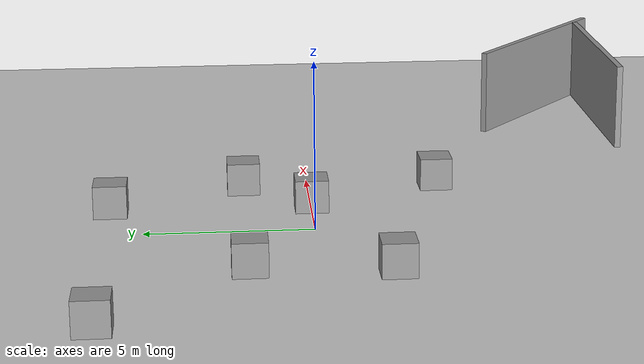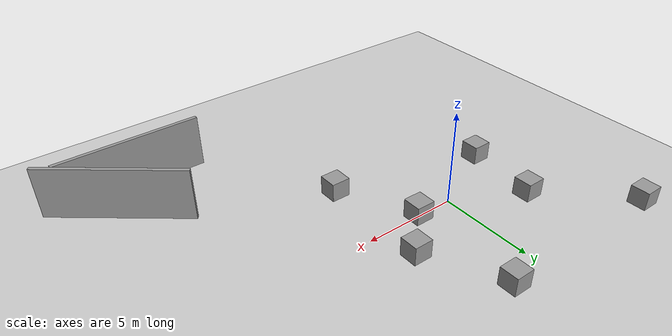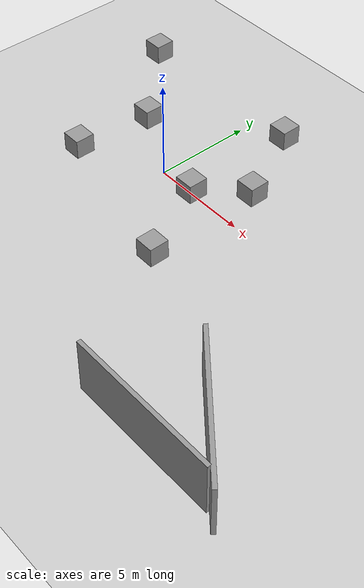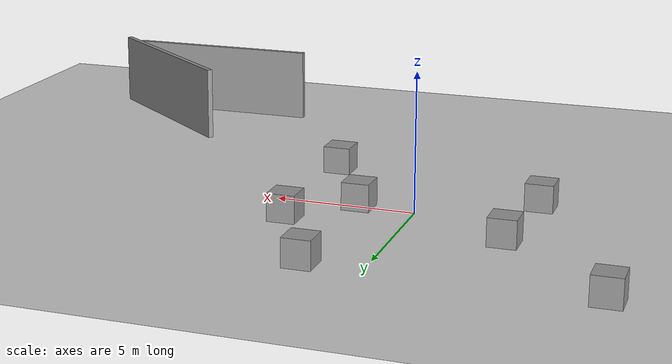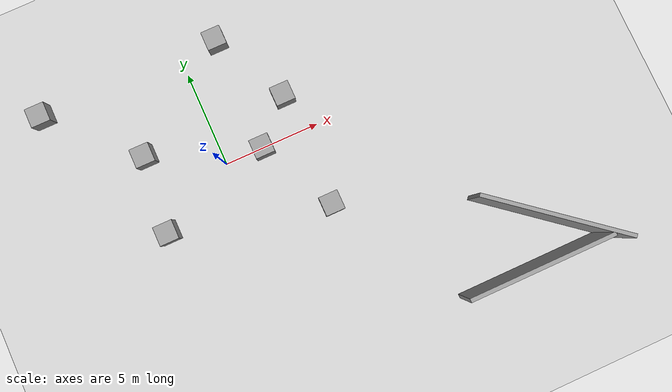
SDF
<sdf version="1.4">
 <world name="default">
  <light name="sun" type="directional">
   <pose>0 0 10 0 -0 0</pose>
   <diffuse>0.8 0.8 0.8 1</diffuse>
   <specular>0.2 0.2 0.2 1</specular>
   <attenuation>
    <range>1000</range>
    <constant>0.9</constant>
    <linear>0.01</linear>
    <quadratic>0.001</quadratic>
   </attenuation>
   <direction>-0.5 0.1 -0.9</direction>
  </light>
  <model name="ground_plane">
   <static>1</static>
   <link name="link">
    <collision name="collision">
     <geometry><plane><normal>0 0 1</normal><size>100 100</size></plane></geometry>
     <surface><friction><ode><mu>100</mu><mu2>50</mu2></ode></friction></surface>
    </collision>
    <visual name="visual">
     <cast_shadows>0</cast_shadows>
     <geometry><plane><normal>0 0 1</normal><size>100 100</size></plane></geometry>
     <material>
      <script><uri>file://media/materials/scripts/gazebo.material</uri><name>Gazebo/Grey</name></script>
     </material>
    </visual>
    <velocity_decay><linear>0</linear><angular>0</angular></velocity_decay>
   </link>
  </model>
  <physics type="ode">
   <max_step_size>0.001</max_step_size>
   <real_time_factor>1</real_time_factor>
   <real_time_update_rate>0.0</real_time_update_rate>
   <gravity>0 0 -9.8</gravity>
  </physics>
  <scene><ambient>0.4 0.4 0.4 1</ambient><background>0.7 0.7 0.7 1</background><shadows>1</shadows></scene>
  <spherical_coordinates>
   <surface_model>EARTH_WGS84</surface_model>
   <latitude_deg>0</latitude_deg>
   <longitude_deg>0</longitude_deg>
   <elevation>0</elevation>
   <heading_deg>0</heading_deg>
  </spherical_coordinates>
  <model name="grey_wall">
   <static>1</static>
   <link name="link">
    <pose>0 0 1.4 0 -0 0</pose>
    <collision name="collision"><geometry><box><size>7.5 0.2 2.8</size></box></geometry></collision>
    <visual name="visual">
     <cast_shadows>0</cast_shadows>
     <geometry><box><size>7.5 0.2 2.8</size></box></geometry>
     <material>
      <script>
       <uri>model://grey_wall/materials/scripts</uri>
       <uri>model://grey_wall/materials/textures</uri>
       <name>vrc/grey_wall</name>
      </script>
     </material>
    </visual>
    <velocity_decay><linear>0</linear><angular>0</angular></velocity_decay>
   </link>
   <pose>11.6445 -10.779 0 0 -0 0</pose>
  </model>
  <model name="grey_wall_0">
   <static>1</static>
   <link name="link">
    <pose>0 0 1.4 0 -0 0</pose>
    <collision name="collision"><geometry><box><size>7.5 0.2 2.8</size></box></geometry></collision>
    <visual name="visual">
     <cast_shadows>0</cast_shadows>
     <geometry><box><size>7.5 0.2 2.8</size></box></geometry>
     <material>
      <script>
       <uri>model://grey_wall/materials/scripts</uri>
       <uri>model://grey_wall/materials/textures</uri>
       <name>vrc/grey_wall</name>
      </script>
     </material>
    </visual>
    <velocity_decay><linear>0</linear><angular>0</angular></velocity_decay>
   </link>
   <pose>13.2997 -8.91354 0 0 0 -0.680409</pose>
  </model>
  <model name="unit_box_1">
   <pose>4 2 0.505 0 -0 0</pose>
   <link name="link">
    <inertial>
     <mass>1</mass>
     <inertia><ixx>1</ixx><ixy>0</ixy><ixz>0</ixz><iyy>1</iyy><iyz>0</iyz><izz>1</izz></inertia>
    </inertial>
    <collision name="collision"><geometry><box><size>1 1 1</size></box></geometry></collision>
    <visual name="visual">
     <geometry><box><size>1 1 1</size></box></geometry>
     <material>
      <script><uri>file://media/materials/scripts/gazebo.material</uri><name>Gazebo/Grey</name></script>
     </material>
    </visual>
    <velocity_decay><linear>0</linear><angular>0</angular></velocity_decay>
   </link>
   <static>0</static>
  </model>
  <model name="unit_box_2">
   <pose>2 0 0.505 0 -0 0</pose>
   <link name="link">
    <inertial>
     <mass>1</mass>
     <inertia><ixx>1</ixx><ixy>0</ixy><ixz>0</ixz><iyy>1</iyy><iyz>0</iyz><izz>1</izz></inertia>
    </inertial>
    <collision name="collision"><geometry><box><size>1 1 1</size></box></geometry></collision>
    <visual name="visual">
     <geometry><box><size>1 1 1</size></box></geometry>
     <material>
      <script><uri>file://media/materials/scripts/gazebo.material</uri><name>Gazebo/Grey</name></script>
     </material>
    </visual>
    <velocity_decay><linear>0</linear><angular>0</angular></velocity_decay>
   </link>
   <static>0</static>
  </model>
  <model name="unit_box_3">
   <pose>4 -4 0.505 0 -0 0</pose>
   <link name="link">
    <inertial>
     <mass>1</mass>
     <inertia><ixx>1</ixx><ixy>0</ixy><ixz>0</ixz><iyy>1</iyy><iyz>0</iyz><izz>1</izz></inertia>
    </inertial>
    <collision name="collision"><geometry><box><size>1 1 1</size></box></geometry></collision>
    <visual name="visual">
     <geometry><box><size>1 1 1</size></box></geometry>
     <material>
      <script><uri>file://media/materials/scripts/gazebo.material</uri><name>Gazebo/Grey</name></script>
     </material>
    </visual>
    <velocity_decay><linear>0</linear><angular>0</angular></velocity_decay>
   </link>
   <static>0</static>
  </model>
  <model name="unit_box_4">
   <pose>2 6 0.505 0 -0 0</pose>
   <link name="link">
    <inertial>
     <mass>1</mass>
     <inertia><ixx>1</ixx><ixy>0</ixy><ixz>0</ixz><iyy>1</iyy><iyz>0</iyz><izz>1</izz></inertia>
    </inertial>
    <collision name="collision"><geometry><box><size>1 1 1</size></box></geometry></collision>
    <visual name="visual">
     <geometry><box><size>1 1 1</size></box></geometry>
     <material>
      <script><uri>file://media/materials/scripts/gazebo.material</uri><name>Gazebo/Grey</name></script>
     </material>
    </visual>
    <velocity_decay><linear>0</linear><angular>0</angular></velocity_decay>
   </link>
   <static>0</static>
  </model>
  <model name="unit_box_5">
   <pose>-3.5838 2 0.505 0 -0 0</pose>
   <link name="link">
    <inertial>
     <mass>1</mass>
     <inertia><ixx>1</ixx><ixy>0</ixy><ixz>0</ixz><iyy>1</iyy><iyz>0</iyz><izz>1</izz></inertia>
    </inertial>
    <collision name="collision"><geometry><box><size>1 1 1</size></box></geometry></collision>
    <visual name="visual">
     <geometry><box><size>1 1 1</size></box></geometry>
     <material>
      <script><uri>file://media/materials/scripts/gazebo.material</uri><name>Gazebo/Grey</name></script>
     </material>
    </visual>
    <velocity_decay><linear>0</linear><angular>0</angular></velocity_decay>
   </link>
   <static>0</static>
  </model>
  <model name="unit_box_6">
   <pose>-7.54427 6 0.505 0 -0 0</pose>
   <link name="link">
    <inertial>
     <mass>1</mass>
     <inertia><ixx>1</ixx><ixy>0</ixy><ixz>0</ixz><iyy>1</iyy><iyz>0</iyz><izz>1</izz></inertia>
    </inertial>
    <collision name="collision"><geometry><box><size>1 1 1</size></box></geometry></collision>
    <visual name="visual">
     <geometry><box><size>1 1 1</size></box></geometry>
     <material>
      <script><uri>file://media/materials/scripts/gazebo.material</uri><name>Gazebo/Grey</name></script>
     </material>
    </visual>
    <velocity_decay><linear>0</linear><angular>0</angular></velocity_decay>
   </link>
   <static>0</static>
  </model>
  <model name="unit_box_7">
   <pose>-4 -2 0.505 0 -0 0</pose>
   <link name="link">
    <inertial>
     <mass>1</mass>
     <inertia><ixx>1</ixx><ixy>0</ixy><ixz>0</ixz><iyy>1</iyy><iyz>0</iyz><izz>1</izz></inertia>
    </inertial>
    <collision name="collision"><geometry><box><size>1 1 1</size></box></geometry></collision>
    <visual name="visual">
     <geometry><box><size>1 1 1</size></box></geometry>
     <material>
      <script><uri>file://media/materials/scripts/gazebo.material</uri><name>Gazebo/Grey</name></script>
     </material>
    </visual>
    <velocity_decay><linear>0</linear><angular>0</angular></velocity_decay>
   </link>
   <static>0</static>
  </model>
 </world>
</sdf>
